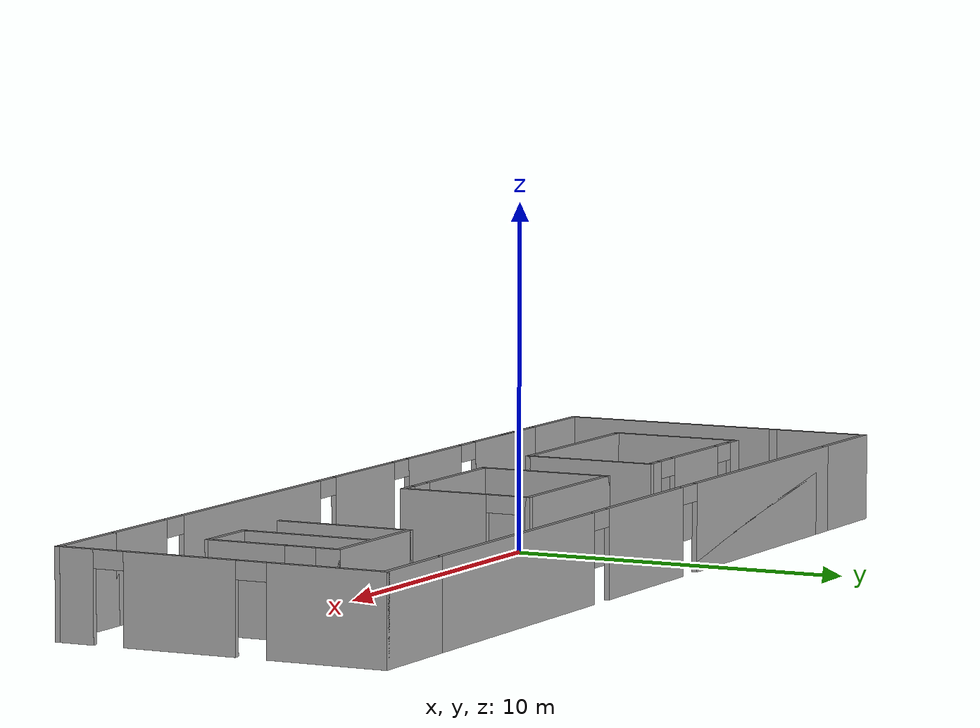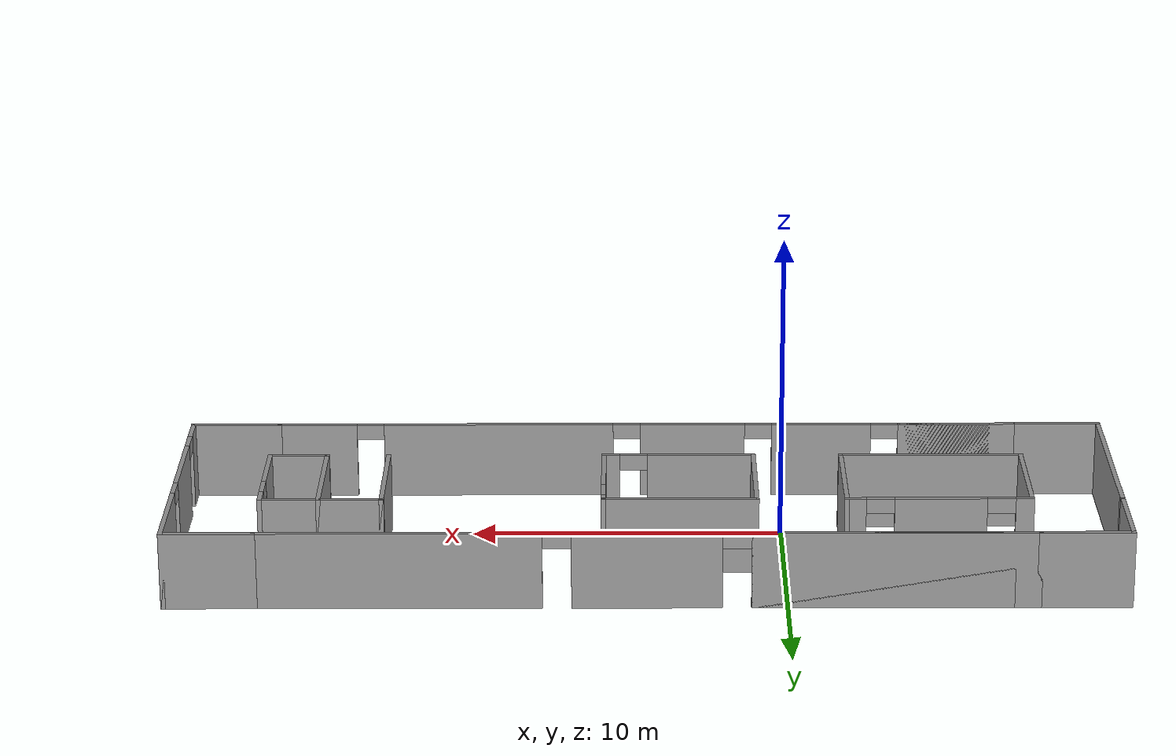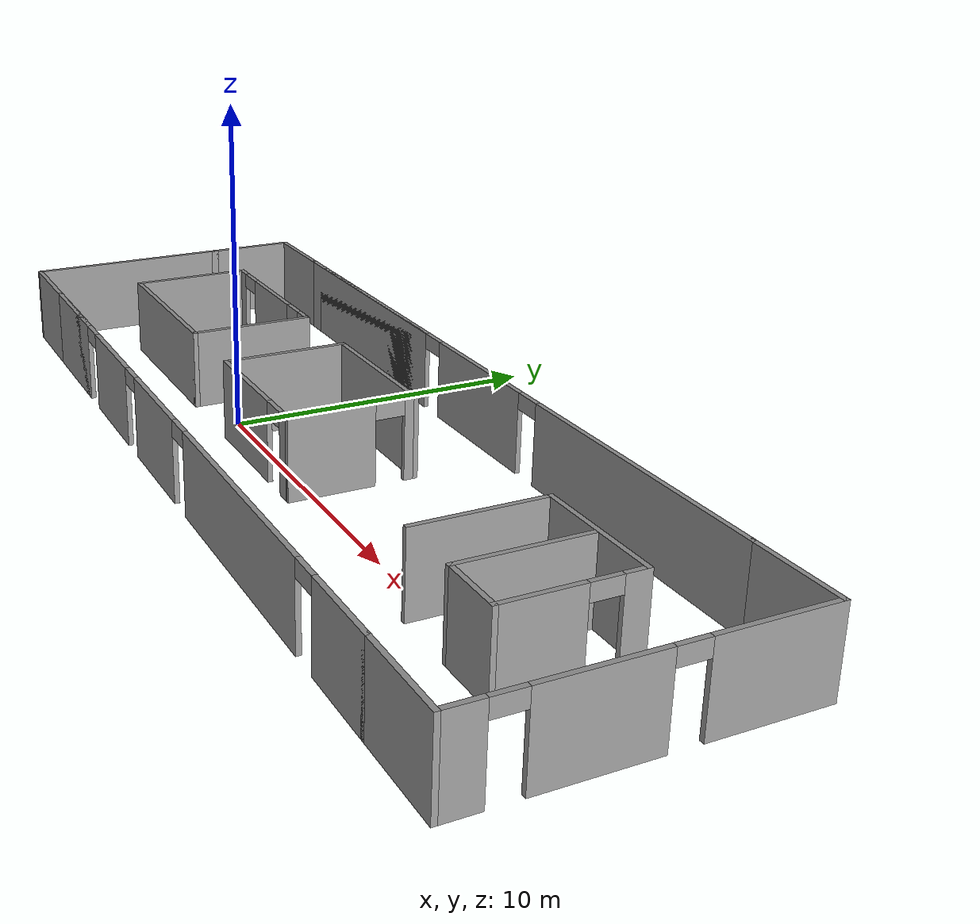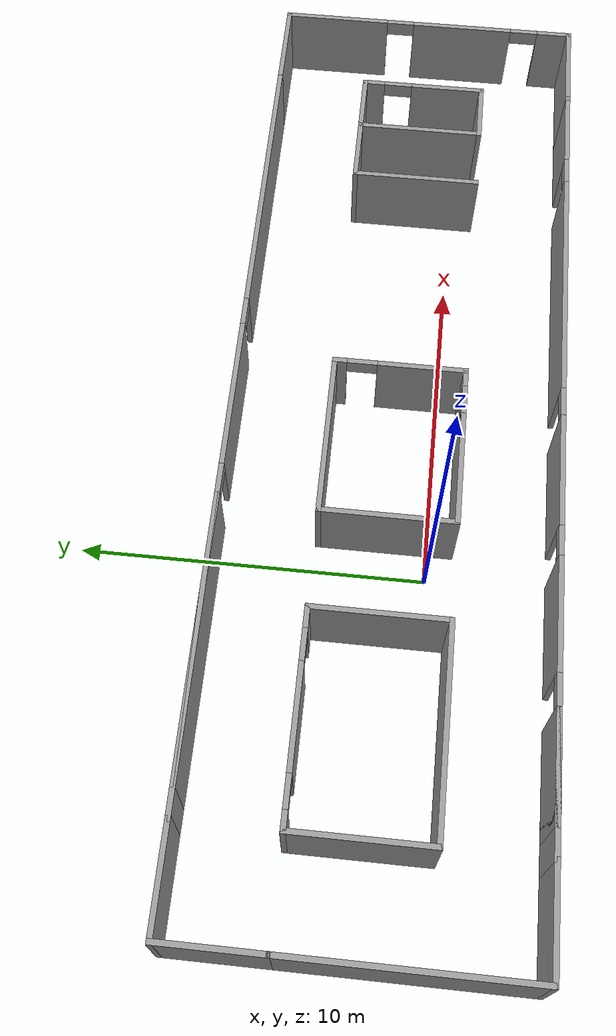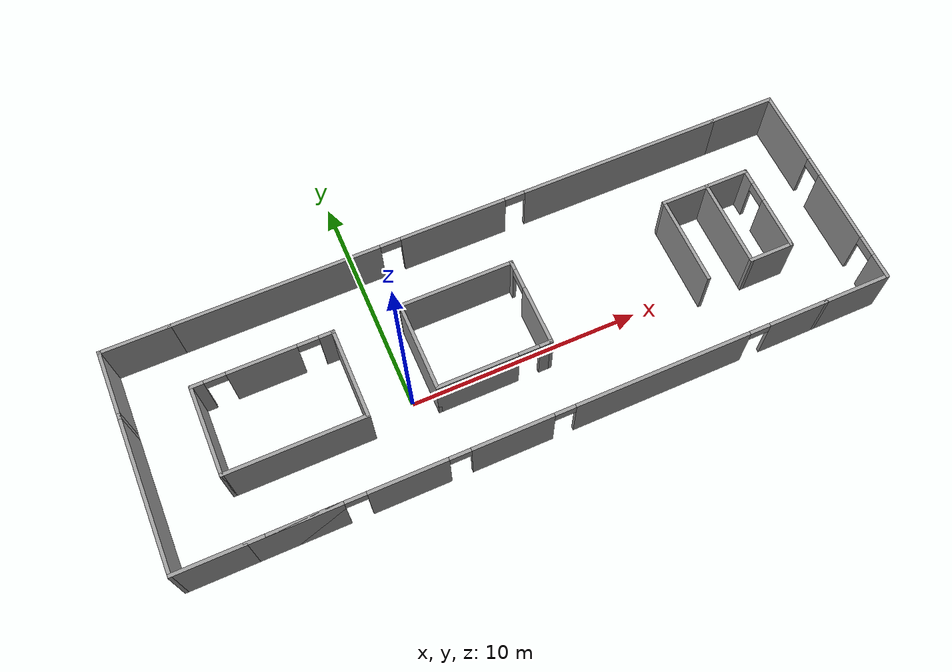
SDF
<?xml version='1.0'?>
<sdf version='1.7'>
  <model name='INB-3floor'>
    <pose>-628.792 255.403 0 0 -0 0</pose>
    <link name='Wall_28'>
      <collision name='Wall_28_Collision'>
        <geometry>
          <box>
            <size>115.75 0.15 2.5</size>
          </box>
        </geometry>
        <pose>0 0 1.25 0 -0 0</pose>
      </collision>
      <visual name='Wall_28_Visual'>
        <pose>0 0 1.25 0 -0 0</pose>
        <geometry>
          <box>
            <size>115.75 0.15 2.5</size>
          </box>
        </geometry>
        <material>
          <script>
            <uri>file://media/materials/scripts/gazebo.material</uri>
            <name>Gazebo/Grey</name>
          </script>
          <ambient>1 1 1 1</ambient>
        </material>
        <meta>
          <layer>0</layer>
        </meta>
      </visual>
      <pose>-633.213 203.092 0 0 -0 -1.8326</pose>
    </link>
    <link name='Wall_31'>
      <collision name='Wall_31_Collision'>
        <geometry>
          <box>
            <size>4 0.15 2.5</size>
          </box>
        </geometry>
        <pose>0 0 1.25 0 -0 0</pose>
      </collision>
      <visual name='Wall_31_Visual'>
        <pose>0 0 1.25 0 -0 0</pose>
        <geometry>
          <box>
            <size>4 0.15 2.5</size>
          </box>
        </geometry>
        <material>
          <script>
            <uri>file://media/materials/scripts/gazebo.material</uri>
            <name>Gazebo/Grey</name>
          </script>
          <ambient>1 1 1 1</ambient>
        </material>
        <meta>
          <layer>0</layer>
        </meta>
      </visual>
      <pose>620.99 -254.164 0 0 -0 -1.5708</pose>
    </link>
    <link name='Wall_32'>
      <collision name='Wall_32_Collision'>
        <geometry>
          <box>
            <size>6 0.15 2.5</size>
          </box>
        </geometry>
        <pose>0 0 1.25 0 -0 0</pose>
      </collision>
      <visual name='Wall_32_Visual'>
        <pose>0 0 1.25 0 -0 0</pose>
        <geometry>
          <box>
            <size>6 0.15 2.5</size>
          </box>
        </geometry>
        <material>
          <script>
            <uri>file://media/materials/scripts/gazebo.material</uri>
            <name>Gazebo/Grey</name>
          </script>
          <ambient>1 1 1 1</ambient>
        </material>
        <meta>
          <layer>0</layer>
        </meta>
      </visual>
      <pose>623.915 -256.089 0 0 -0 0</pose>
    </link>
    <link name='Wall_34'>
      <pose>632.115 -256.089 0 0 -0 0</pose>
      <visual name='Wall_34_Visual_0'>
        <pose>-0.74226 0 1.25 0 -0 0</pose>
        <geometry>
          <box>
            <size>3.51548 0.15 2.5</size>
          </box>
        </geometry>
        <material>
          <script>
            <uri>file://media/materials/scripts/gazebo.material</uri>
            <name>Gazebo/Grey</name>
          </script>
          <ambient>1 1 1 1</ambient>
        </material>
        <meta>
          <layer>0</layer>
        </meta>
      </visual>
      <collision name='Wall_34_Collision_0'>
        <geometry>
          <box>
            <size>3.51548 0.15 2.5</size>
          </box>
        </geometry>
        <pose>-0.74226 0 1.25 0 -0 0</pose>
      </collision>
      <visual name='Wall_34_Visual_1'>
        <pose>2.20774 0 1.25 0 -0 0</pose>
        <geometry>
          <box>
            <size>0.584521 0.15 2.5</size>
          </box>
        </geometry>
        <material>
          <script>
            <uri>file://media/materials/scripts/gazebo.material</uri>
            <name>Gazebo/Grey</name>
          </script>
          <ambient>1 1 1 1</ambient>
        </material>
        <meta>
          <layer>0</layer>
        </meta>
      </visual>
      <collision name='Wall_34_Collision_1'>
        <geometry>
          <box>
            <size>0.584521 0.15 2.5</size>
          </box>
        </geometry>
        <pose>2.20774 0 1.25 0 -0 0</pose>
      </collision>
      <visual name='Wall_34_Visual_2'>
        <pose>1.46548 0 2.25 0 -0 0</pose>
        <geometry>
          <box>
            <size>0.9 0.15 0.5</size>
          </box>
        </geometry>
        <material>
          <script>
            <uri>file://media/materials/scripts/gazebo.material</uri>
            <name>Gazebo/Grey</name>
          </script>
          <ambient>1 1 1 1</ambient>
        </material>
        <meta>
          <layer>0</layer>
        </meta>
      </visual>
      <collision name='Wall_34_Collision_2'>
        <geometry>
          <box>
            <size>0.9 0.15 0.5</size>
          </box>
        </geometry>
        <pose>1.46548 0 2.25 0 -0 0</pose>
      </collision>
    </link>
    <link name='Wall_35'>
      <pose>634.54 -254.164 0 0 -0 1.5708</pose>
      <visual name='Wall_35_Visual_0'>
        <pose>-0.667392 0 1.25 0 -0 0</pose>
        <geometry>
          <box>
            <size>2.66522 0.15 2.5</size>
          </box>
        </geometry>
        <material>
          <script>
            <uri>file://media/materials/scripts/gazebo.material</uri>
            <name>Gazebo/Grey</name>
          </script>
          <ambient>1 1 1 1</ambient>
        </material>
        <meta>
          <layer>0</layer>
        </meta>
      </visual>
      <collision name='Wall_35_Collision_0'>
        <geometry>
          <box>
            <size>2.66522 0.15 2.5</size>
          </box>
        </geometry>
        <pose>-0.667392 0 1.25 0 -0 0</pose>
      </collision>
      <visual name='Wall_35_Visual_1'>
        <pose>1.78261 0 1.25 0 -0 0</pose>
        <geometry>
          <box>
            <size>0.434784 0.15 2.5</size>
          </box>
        </geometry>
        <material>
          <script>
            <uri>file://media/materials/scripts/gazebo.material</uri>
            <name>Gazebo/Grey</name>
          </script>
          <ambient>1 1 1 1</ambient>
        </material>
        <meta>
          <layer>0</layer>
        </meta>
      </visual>
      <collision name='Wall_35_Collision_1'>
        <geometry>
          <box>
            <size>0.434784 0.15 2.5</size>
          </box>
        </geometry>
        <pose>1.78261 0 1.25 0 -0 0</pose>
      </collision>
      <visual name='Wall_35_Visual_2'>
        <pose>1.11522 0 2.25 0 -0 0</pose>
        <geometry>
          <box>
            <size>0.9 0.15 0.5</size>
          </box>
        </geometry>
        <material>
          <script>
            <uri>file://media/materials/scripts/gazebo.material</uri>
            <name>Gazebo/Grey</name>
          </script>
          <ambient>1 1 1 1</ambient>
        </material>
        <meta>
          <layer>0</layer>
        </meta>
      </visual>
      <collision name='Wall_35_Collision_2'>
        <geometry>
          <box>
            <size>0.9 0.15 0.5</size>
          </box>
        </geometry>
        <pose>1.11522 0 2.25 0 -0 0</pose>
      </collision>
    </link>
    <link name='Wall_36'>
      <collision name='Wall_36_Collision'>
        <geometry>
          <box>
            <size>5 0.15 2.5</size>
          </box>
        </geometry>
        <pose>0 0 1.25 0 -0 0</pose>
      </collision>
      <visual name='Wall_36_Visual'>
        <pose>0 0 1.25 0 -0 0</pose>
        <geometry>
          <box>
            <size>5 0.15 2.5</size>
          </box>
        </geometry>
        <material>
          <script>
            <uri>file://media/materials/scripts/gazebo.material</uri>
            <name>Gazebo/Grey</name>
          </script>
          <ambient>1 1 1 1</ambient>
        </material>
        <meta>
          <layer>0</layer>
        </meta>
      </visual>
      <pose>632.115 -252.239 0 0 -0 3.14159</pose>
    </link>
    <link name='Wall_37'>
      <collision name='Wall_37_Collision'>
        <geometry>
          <box>
            <size>4 0.15 2.5</size>
          </box>
        </geometry>
        <pose>0 0 1.25 0 -0 0</pose>
      </collision>
      <visual name='Wall_37_Visual'>
        <pose>0 0 1.25 0 -0 0</pose>
        <geometry>
          <box>
            <size>4 0.15 2.5</size>
          </box>
        </geometry>
        <material>
          <script>
            <uri>file://media/materials/scripts/gazebo.material</uri>
            <name>Gazebo/Grey</name>
          </script>
          <ambient>1 1 1 1</ambient>
        </material>
        <meta>
          <layer>0</layer>
        </meta>
      </visual>
      <pose>629.69 -254.164 0 0 -0 -1.5708</pose>
    </link>
    <link name='Wall_40'>
      <pose>623.915 -252.239 0 0 -0 3.14159</pose>
      <visual name='Wall_40_Visual_0'>
        <pose>-2.65804 0 1.25 0 -0 0</pose>
        <geometry>
          <box>
            <size>0.68392 0.15 2.5</size>
          </box>
        </geometry>
        <material>
          <script>
            <uri>file://media/materials/scripts/gazebo.material</uri>
            <name>Gazebo/Grey</name>
          </script>
          <ambient>1 1 1 1</ambient>
        </material>
        <meta>
          <layer>0</layer>
        </meta>
      </visual>
      <collision name='Wall_40_Collision_0'>
        <geometry>
          <box>
            <size>0.68392 0.15 2.5</size>
          </box>
        </geometry>
        <pose>-2.65804 0 1.25 0 -0 0</pose>
      </collision>
      <visual name='Wall_40_Visual_1'>
        <pose>0.048319 0 1.25 0 -0 0</pose>
        <geometry>
          <box>
            <size>2.9288 0.15 2.5</size>
          </box>
        </geometry>
        <material>
          <script>
            <uri>file://media/materials/scripts/gazebo.material</uri>
            <name>Gazebo/Grey</name>
          </script>
          <ambient>1 1 1 1</ambient>
        </material>
        <meta>
          <layer>0</layer>
        </meta>
      </visual>
      <collision name='Wall_40_Collision_1'>
        <geometry>
          <box>
            <size>2.9288 0.15 2.5</size>
          </box>
        </geometry>
        <pose>0.048319 0 1.25 0 -0 0</pose>
      </collision>
      <visual name='Wall_40_Visual_2'>
        <pose>2.70636 0 1.25 0 -0 0</pose>
        <geometry>
          <box>
            <size>0.587283 0.15 2.5</size>
          </box>
        </geometry>
        <material>
          <script>
            <uri>file://media/materials/scripts/gazebo.material</uri>
            <name>Gazebo/Grey</name>
          </script>
          <ambient>1 1 1 1</ambient>
        </material>
        <meta>
          <layer>0</layer>
        </meta>
      </visual>
      <collision name='Wall_40_Collision_2'>
        <geometry>
          <box>
            <size>0.587283 0.15 2.5</size>
          </box>
        </geometry>
        <pose>2.70636 0 1.25 0 -0 0</pose>
      </collision>
      <visual name='Wall_40_Visual_3'>
        <pose>-1.86608 0 2.25 0 -0 0</pose>
        <geometry>
          <box>
            <size>0.9 0.15 0.5</size>
          </box>
        </geometry>
        <material>
          <script>
            <uri>file://media/materials/scripts/gazebo.material</uri>
            <name>Gazebo/Grey</name>
          </script>
          <ambient>1 1 1 1</ambient>
        </material>
        <meta>
          <layer>0</layer>
        </meta>
      </visual>
      <collision name='Wall_40_Collision_3'>
        <geometry>
          <box>
            <size>0.9 0.15 0.5</size>
          </box>
        </geometry>
        <pose>-1.86608 0 2.25 0 -0 0</pose>
      </collision>
      <visual name='Wall_40_Visual_4'>
        <pose>1.96272 0 2.25 0 -0 0</pose>
        <geometry>
          <box>
            <size>0.9 0.15 0.5</size>
          </box>
        </geometry>
        <material>
          <script>
            <uri>file://media/materials/scripts/gazebo.material</uri>
            <name>Gazebo/Grey</name>
          </script>
          <ambient>1 1 1 1</ambient>
        </material>
        <meta>
          <layer>0</layer>
        </meta>
      </visual>
      <collision name='Wall_40_Collision_4'>
        <geometry>
          <box>
            <size>0.9 0.15 0.5</size>
          </box>
        </geometry>
        <pose>1.96272 0 2.25 0 -0 0</pose>
      </collision>
    </link>
    <link name='Wall_43'>
      <collision name='Wall_43_Collision'>
        <geometry>
          <box>
            <size>4 0.15 2.5</size>
          </box>
        </geometry>
        <pose>0 0 1.25 0 -0 0</pose>
      </collision>
      <visual name='Wall_43_Visual'>
        <pose>0 0 1.25 0 -0 0</pose>
        <geometry>
          <box>
            <size>4 0.15 2.5</size>
          </box>
        </geometry>
        <material>
          <script>
            <uri>file://media/materials/scripts/gazebo.material</uri>
            <name>Gazebo/Grey</name>
          </script>
          <ambient>1 1 1 1</ambient>
        </material>
        <meta>
          <layer>0</layer>
        </meta>
      </visual>
      <pose>626.84 -254.164 0 0 -0 -1.5708</pose>
    </link>
    <link name='Wall_49'>
      <collision name='Wall_49_Collision'>
        <geometry>
          <box>
            <size>4 0.15 2.5</size>
          </box>
        </geometry>
        <pose>0 0 1.25 0 -0 0</pose>
      </collision>
      <visual name='Wall_49_Visual'>
        <pose>0 0 1.25 0 -0 0</pose>
        <geometry>
          <box>
            <size>4 0.15 2.5</size>
          </box>
        </geometry>
        <material>
          <script>
            <uri>file://media/materials/scripts/gazebo.material</uri>
            <name>Gazebo/Grey</name>
          </script>
          <ambient>1 1 1 1</ambient>
        </material>
        <meta>
          <layer>0</layer>
        </meta>
      </visual>
      <pose>641.543 -254.161 0 0 -0 -1.5708</pose>
    </link>
    <link name='Wall_51'>
      <collision name='Wall_51_Collision'>
        <geometry>
          <box>
            <size>4 0.15 2.5</size>
          </box>
        </geometry>
        <pose>0 0 1.25 0 -0 0</pose>
      </collision>
      <visual name='Wall_51_Visual'>
        <pose>0 0 1.25 0 -0 0</pose>
        <geometry>
          <box>
            <size>4 0.15 2.5</size>
          </box>
        </geometry>
        <material>
          <script>
            <uri>file://media/materials/scripts/gazebo.material</uri>
            <name>Gazebo/Grey</name>
          </script>
          <ambient>1 1 1 1</ambient>
        </material>
        <meta>
          <layer>0</layer>
        </meta>
      </visual>
      <pose>643.468 -252.236 0 0 -0 0</pose>
    </link>
    <link name='Wall_52'>
      <pose>645.393 -254.161 0 0 -0 -1.5708</pose>
      <visual name='Wall_52_Visual_0'>
        <pose>-1.63929 0 1.25 0 -0 0</pose>
        <geometry>
          <box>
            <size>0.721425 0.15 2.5</size>
          </box>
        </geometry>
        <material>
          <script>
            <uri>file://media/materials/scripts/gazebo.material</uri>
            <name>Gazebo/Grey</name>
          </script>
          <ambient>1 1 1 1</ambient>
        </material>
        <meta>
          <layer>0</layer>
        </meta>
      </visual>
      <collision name='Wall_52_Collision_0'>
        <geometry>
          <box>
            <size>0.721425 0.15 2.5</size>
          </box>
        </geometry>
        <pose>-1.63929 0 1.25 0 -0 0</pose>
      </collision>
      <visual name='Wall_52_Visual_1'>
        <pose>0.810712 0 1.25 0 -0 0</pose>
        <geometry>
          <box>
            <size>2.37858 0.15 2.5</size>
          </box>
        </geometry>
        <material>
          <script>
            <uri>file://media/materials/scripts/gazebo.material</uri>
            <name>Gazebo/Grey</name>
          </script>
          <ambient>1 1 1 1</ambient>
        </material>
        <meta>
          <layer>0</layer>
        </meta>
      </visual>
      <collision name='Wall_52_Collision_1'>
        <geometry>
          <box>
            <size>2.37858 0.15 2.5</size>
          </box>
        </geometry>
        <pose>0.810712 0 1.25 0 -0 0</pose>
      </collision>
      <visual name='Wall_52_Visual_2'>
        <pose>-0.828575 0 2.25 0 -0 0</pose>
        <geometry>
          <box>
            <size>0.9 0.15 0.5</size>
          </box>
        </geometry>
        <material>
          <script>
            <uri>file://media/materials/scripts/gazebo.material</uri>
            <name>Gazebo/Grey</name>
          </script>
          <ambient>1 1 1 1</ambient>
        </material>
        <meta>
          <layer>0</layer>
        </meta>
      </visual>
      <collision name='Wall_52_Collision_2'>
        <geometry>
          <box>
            <size>0.9 0.15 0.5</size>
          </box>
        </geometry>
        <pose>-0.828575 0 2.25 0 -0 0</pose>
      </collision>
    </link>
    <link name='Wall_53'>
      <collision name='Wall_53_Collision'>
        <geometry>
          <box>
            <size>2 0.15 2.5</size>
          </box>
        </geometry>
        <pose>0 0 1.25 0 -0 0</pose>
      </collision>
      <visual name='Wall_53_Visual'>
        <pose>0 0 1.25 0 -0 0</pose>
        <geometry>
          <box>
            <size>2 0.15 2.5</size>
          </box>
        </geometry>
        <material>
          <script>
            <uri>file://media/materials/scripts/gazebo.material</uri>
            <name>Gazebo/Grey</name>
          </script>
          <ambient>1 1 1 1</ambient>
        </material>
        <meta>
          <layer>0</layer>
        </meta>
      </visual>
      <pose>644.468 -256.086 0 0 -0 3.14159</pose>
    </link>
    <link name='Wall_54'>
      <collision name='Wall_54_Collision'>
        <geometry>
          <box>
            <size>4 0.15 2.5</size>
          </box>
        </geometry>
        <pose>0 0 1.25 0 -0 0</pose>
      </collision>
      <visual name='Wall_54_Visual'>
        <pose>0 0 1.25 0 -0 0</pose>
        <geometry>
          <box>
            <size>4 0.15 2.5</size>
          </box>
        </geometry>
        <material>
          <script>
            <uri>file://media/materials/scripts/gazebo.material</uri>
            <name>Gazebo/Grey</name>
          </script>
          <ambient>1 1 1 1</ambient>
        </material>
        <meta>
          <layer>0</layer>
        </meta>
      </visual>
      <pose>643.543 -254.161 0 0 -0 1.5708</pose>
    </link>
    <link name='Wall_57'>
      <collision name='Wall_57_Collision'>
        <geometry>
          <box>
            <size>3 0.15 2.5</size>
          </box>
        </geometry>
        <pose>0 0 1.25 0 -0 0</pose>
      </collision>
      <visual name='Wall_57_Visual'>
        <pose>0 0 1.25 0 -0 0</pose>
        <geometry>
          <box>
            <size>3 0.15 2.5</size>
          </box>
        </geometry>
        <material>
          <script>
            <uri>file://media/materials/scripts/gazebo.material</uri>
            <name>Gazebo/Grey</name>
          </script>
          <ambient>1 1 1 1</ambient>
        </material>
        <meta>
          <layer>0</layer>
        </meta>
      </visual>
      <pose>619.565 -258.939 0 0 -0 3.14159</pose>
    </link>
    <link name='Wall_58'>
      <collision name='Wall_58_Collision'>
        <geometry>
          <box>
            <size>6.75 0.15 2.5</size>
          </box>
        </geometry>
        <pose>0 0 1.25 0 -0 0</pose>
      </collision>
      <visual name='Wall_58_Visual'>
        <pose>0 0 1.25 0 -0 0</pose>
        <geometry>
          <box>
            <size>6.75 0.15 2.5</size>
          </box>
        </geometry>
        <material>
          <script>
            <uri>file://media/materials/scripts/gazebo.material</uri>
            <name>Gazebo/Grey</name>
          </script>
          <ambient>1 1 1 1</ambient>
        </material>
        <meta>
          <layer>0</layer>
        </meta>
      </visual>
      <pose>618.14 -255.639 0 0 -0 1.5708</pose>
    </link>
    <link name='Wall_59'>
      <collision name='Wall_59_Collision'>
        <geometry>
          <box>
            <size>0.25 0.15 2.5</size>
          </box>
        </geometry>
        <pose>0 0 1.25 0 -0 0</pose>
      </collision>
      <visual name='Wall_59_Visual'>
        <pose>0 0 1.25 0 -0 0</pose>
        <geometry>
          <box>
            <size>0.25 0.15 2.5</size>
          </box>
        </geometry>
        <material>
          <script>
            <uri>file://media/materials/scripts/gazebo.material</uri>
            <name>Gazebo/Grey</name>
          </script>
          <ambient>1 1 1 1</ambient>
        </material>
        <meta>
          <layer>0</layer>
        </meta>
      </visual>
      <pose>618.14 -252.289 0 0 -0 1.5708</pose>
    </link>
    <link name='Wall_62'>
      <collision name='Wall_62_Collision'>
        <geometry>
          <box>
            <size>3 0.15 2.5</size>
          </box>
        </geometry>
        <pose>0 0 1.25 0 -0 0</pose>
      </collision>
      <visual name='Wall_62_Visual'>
        <pose>0 0 1.25 0 -0 0</pose>
        <geometry>
          <box>
            <size>3 0.15 2.5</size>
          </box>
        </geometry>
        <material>
          <script>
            <uri>file://media/materials/scripts/gazebo.material</uri>
            <name>Gazebo/Grey</name>
          </script>
          <ambient>1 1 1 1</ambient>
        </material>
        <meta>
          <layer>0</layer>
        </meta>
      </visual>
      <pose>619.565 -249.389 0 0 -0 3.14159</pose>
    </link>
    <link name='Wall_63'>
      <collision name='Wall_63_Collision'>
        <geometry>
          <box>
            <size>3 0.15 2.5</size>
          </box>
        </geometry>
        <pose>0 0 1.25 0 -0 0</pose>
      </collision>
      <visual name='Wall_63_Visual'>
        <pose>0 0 1.25 0 -0 0</pose>
        <geometry>
          <box>
            <size>3 0.15 2.5</size>
          </box>
        </geometry>
        <material>
          <script>
            <uri>file://media/materials/scripts/gazebo.material</uri>
            <name>Gazebo/Grey</name>
          </script>
          <ambient>1 1 1 1</ambient>
        </material>
        <meta>
          <layer>0</layer>
        </meta>
      </visual>
      <pose>618.14 -250.814 0 0 -0 -1.5708</pose>
    </link>
    <link name='Wall_65'>
      <pose>633.165 -249.389 0 0 -0 0</pose>
      <visual name='Wall_65_Visual_0'>
        <pose>-7.74468 0 1.25 0 -0 0</pose>
        <geometry>
          <box>
            <size>9.01064 0.15 2.5</size>
          </box>
        </geometry>
        <material>
          <script>
            <uri>file://media/materials/scripts/gazebo.material</uri>
            <name>Gazebo/Grey</name>
          </script>
          <ambient>1 1 1 1</ambient>
        </material>
        <meta>
          <layer>0</layer>
        </meta>
      </visual>
      <collision name='Wall_65_Collision_0'>
        <geometry>
          <box>
            <size>9.01064 0.15 2.5</size>
          </box>
        </geometry>
        <pose>-7.74468 0 1.25 0 -0 0</pose>
      </collision>
      <visual name='Wall_65_Visual_1'>
        <pose>-7.3272 0 1.25 0 -0 0</pose>
        <geometry>
          <box>
            <size>8.17567 0.15 2.5</size>
          </box>
        </geometry>
        <material>
          <script>
            <uri>file://media/materials/scripts/gazebo.material</uri>
            <name>Gazebo/Grey</name>
          </script>
          <ambient>1 1 1 1</ambient>
        </material>
        <meta>
          <layer>0</layer>
        </meta>
      </visual>
      <collision name='Wall_65_Collision_1'>
        <geometry>
          <box>
            <size>8.17567 0.15 2.5</size>
          </box>
        </geometry>
        <pose>-7.3272 0 1.25 0 -0 0</pose>
      </collision>
      <visual name='Wall_65_Visual_2'>
        <pose>0.004238 0 1.25 0 -0 0</pose>
        <geometry>
          <box>
            <size>4.68721 0.15 2.5</size>
          </box>
        </geometry>
        <material>
          <script>
            <uri>file://media/materials/scripts/gazebo.material</uri>
            <name>Gazebo/Grey</name>
          </script>
          <ambient>1 1 1 1</ambient>
        </material>
        <meta>
          <layer>0</layer>
        </meta>
      </visual>
      <collision name='Wall_65_Collision_2'>
        <geometry>
          <box>
            <size>4.68721 0.15 2.5</size>
          </box>
        </geometry>
        <pose>0.004238 0 1.25 0 -0 0</pose>
      </collision>
      <visual name='Wall_65_Visual_3'>
        <pose>7.74892 0 1.25 0 -0 0</pose>
        <geometry>
          <box>
            <size>9.00216 0.15 2.5</size>
          </box>
        </geometry>
        <material>
          <script>
            <uri>file://media/materials/scripts/gazebo.material</uri>
            <name>Gazebo/Grey</name>
          </script>
          <ambient>1 1 1 1</ambient>
        </material>
        <meta>
          <layer>0</layer>
        </meta>
      </visual>
      <collision name='Wall_65_Collision_3'>
        <geometry>
          <box>
            <size>9.00216 0.15 2.5</size>
          </box>
        </geometry>
        <pose>7.74892 0 1.25 0 -0 0</pose>
      </collision>
      <visual name='Wall_65_Visual_4'>
        <pose>-2.78937 0 2.25 0 -0 0</pose>
        <geometry>
          <box>
            <size>0.9 0.15 0.5</size>
          </box>
        </geometry>
        <material>
          <script>
            <uri>file://media/materials/scripts/gazebo.material</uri>
            <name>Gazebo/Grey</name>
          </script>
          <ambient>1 1 1 1</ambient>
        </material>
        <meta>
          <layer>0</layer>
        </meta>
      </visual>
      <collision name='Wall_65_Collision_4'>
        <geometry>
          <box>
            <size>0.9 0.15 0.5</size>
          </box>
        </geometry>
        <pose>-2.78937 0 2.25 0 -0 0</pose>
      </collision>
      <visual name='Wall_65_Visual_5'>
        <pose>-2.78937 0 2.25 0 -0 0</pose>
        <geometry>
          <box>
            <size>0.9 0.15 0.5</size>
          </box>
        </geometry>
        <material>
          <script>
            <uri>file://media/materials/scripts/gazebo.material</uri>
            <name>Gazebo/Grey</name>
          </script>
          <ambient>1 1 1 1</ambient>
        </material>
        <meta>
          <layer>0</layer>
        </meta>
      </visual>
      <collision name='Wall_65_Collision_5'>
        <geometry>
          <box>
            <size>0.9 0.15 0.5</size>
          </box>
        </geometry>
        <pose>-2.78937 0 2.25 0 -0 0</pose>
      </collision>
      <visual name='Wall_65_Visual_6'>
        <pose>2.79784 0 2.25 0 -0 0</pose>
        <geometry>
          <box>
            <size>0.9 0.15 0.5</size>
          </box>
        </geometry>
        <material>
          <script>
            <uri>file://media/materials/scripts/gazebo.material</uri>
            <name>Gazebo/Grey</name>
          </script>
          <ambient>1 1 1 1</ambient>
        </material>
        <meta>
          <layer>0</layer>
        </meta>
      </visual>
      <collision name='Wall_65_Collision_6'>
        <geometry>
          <box>
            <size>0.9 0.15 0.5</size>
          </box>
        </geometry>
        <pose>2.79784 0 2.25 0 -0 0</pose>
      </collision>
    </link>
    <link name='Wall_69'>
      <pose>633.165 -258.939 0 0 -0 0</pose>
      <visual name='Wall_69_Visual_0'>
        <pose>-10.3114 0 1.25 0 -0 0</pose>
        <geometry>
          <box>
            <size>3.87721 0.15 2.5</size>
          </box>
        </geometry>
        <material>
          <script>
            <uri>file://media/materials/scripts/gazebo.material</uri>
            <name>Gazebo/Grey</name>
          </script>
          <ambient>1 1 1 1</ambient>
        </material>
        <meta>
          <layer>0</layer>
        </meta>
      </visual>
      <collision name='Wall_69_Collision_0'>
        <geometry>
          <box>
            <size>3.87721 0.15 2.5</size>
          </box>
        </geometry>
        <pose>-10.3114 0 1.25 0 -0 0</pose>
      </collision>
      <visual name='Wall_69_Visual_1'>
        <pose>-9.89391 0 1.25 0 -0 0</pose>
        <geometry>
          <box>
            <size>3.04224 0.15 2.5</size>
          </box>
        </geometry>
        <material>
          <script>
            <uri>file://media/materials/scripts/gazebo.material</uri>
            <name>Gazebo/Grey</name>
          </script>
          <ambient>1 1 1 1</ambient>
        </material>
        <meta>
          <layer>0</layer>
        </meta>
      </visual>
      <collision name='Wall_69_Collision_1'>
        <geometry>
          <box>
            <size>3.04224 0.15 2.5</size>
          </box>
        </geometry>
        <pose>-9.89391 0 1.25 0 -0 0</pose>
      </collision>
      <visual name='Wall_69_Visual_2'>
        <pose>-5.82404 0 1.25 0 -0 0</pose>
        <geometry>
          <box>
            <size>3.2975 0.15 2.5</size>
          </box>
        </geometry>
        <material>
          <script>
            <uri>file://media/materials/scripts/gazebo.material</uri>
            <name>Gazebo/Grey</name>
          </script>
          <ambient>1 1 1 1</ambient>
        </material>
        <meta>
          <layer>0</layer>
        </meta>
      </visual>
      <collision name='Wall_69_Collision_2'>
        <geometry>
          <box>
            <size>3.2975 0.15 2.5</size>
          </box>
        </geometry>
        <pose>-5.82404 0 1.25 0 -0 0</pose>
      </collision>
      <visual name='Wall_69_Visual_3'>
        <pose>-1.54146 0 1.25 0 -0 0</pose>
        <geometry>
          <box>
            <size>3.46766 0.15 2.5</size>
          </box>
        </geometry>
        <material>
          <script>
            <uri>file://media/materials/scripts/gazebo.material</uri>
            <name>Gazebo/Grey</name>
          </script>
          <ambient>1 1 1 1</ambient>
        </material>
        <meta>
          <layer>0</layer>
        </meta>
      </visual>
      <collision name='Wall_69_Collision_3'>
        <geometry>
          <box>
            <size>3.46766 0.15 2.5</size>
          </box>
        </geometry>
        <pose>-1.54146 0 1.25 0 -0 0</pose>
      </collision>
      <visual name='Wall_69_Visual_4'>
        <pose>4.89659 0 1.25 0 -0 0</pose>
        <geometry>
          <box>
            <size>7.60844 0.15 2.5</size>
          </box>
        </geometry>
        <material>
          <script>
            <uri>file://media/materials/scripts/gazebo.material</uri>
            <name>Gazebo/Grey</name>
          </script>
          <ambient>1 1 1 1</ambient>
        </material>
        <meta>
          <layer>0</layer>
        </meta>
      </visual>
      <collision name='Wall_69_Collision_4'>
        <geometry>
          <box>
            <size>7.60844 0.15 2.5</size>
          </box>
        </geometry>
        <pose>4.89659 0 1.25 0 -0 0</pose>
      </collision>
      <visual name='Wall_69_Visual_5'>
        <pose>10.9254 0 1.25 0 -0 0</pose>
        <geometry>
          <box>
            <size>2.64919 0.15 2.5</size>
          </box>
        </geometry>
        <material>
          <script>
            <uri>file://media/materials/scripts/gazebo.material</uri>
            <name>Gazebo/Grey</name>
          </script>
          <ambient>1 1 1 1</ambient>
        </material>
        <meta>
          <layer>0</layer>
        </meta>
      </visual>
      <collision name='Wall_69_Collision_5'>
        <geometry>
          <box>
            <size>2.64919 0.15 2.5</size>
          </box>
        </geometry>
        <pose>10.9254 0 1.25 0 -0 0</pose>
      </collision>
      <visual name='Wall_69_Visual_6'>
        <pose>-7.92279 0 2.25 0 -0 0</pose>
        <geometry>
          <box>
            <size>0.9 0.15 0.5</size>
          </box>
        </geometry>
        <material>
          <script>
            <uri>file://media/materials/scripts/gazebo.material</uri>
            <name>Gazebo/Grey</name>
          </script>
          <ambient>1 1 1 1</ambient>
        </material>
        <meta>
          <layer>0</layer>
        </meta>
      </visual>
      <collision name='Wall_69_Collision_6'>
        <geometry>
          <box>
            <size>0.9 0.15 0.5</size>
          </box>
        </geometry>
        <pose>-7.92279 0 2.25 0 -0 0</pose>
      </collision>
      <visual name='Wall_69_Visual_7'>
        <pose>-7.92279 0 2.25 0 -0 0</pose>
        <geometry>
          <box>
            <size>0.9 0.15 0.5</size>
          </box>
        </geometry>
        <material>
          <script>
            <uri>file://media/materials/scripts/gazebo.material</uri>
            <name>Gazebo/Grey</name>
          </script>
          <ambient>1 1 1 1</ambient>
        </material>
        <meta>
          <layer>0</layer>
        </meta>
      </visual>
      <collision name='Wall_69_Collision_7'>
        <geometry>
          <box>
            <size>0.9 0.15 0.5</size>
          </box>
        </geometry>
        <pose>-7.92279 0 2.25 0 -0 0</pose>
      </collision>
      <visual name='Wall_69_Visual_8'>
        <pose>-3.72529 0 2.25 0 -0 0</pose>
        <geometry>
          <box>
            <size>0.9 0.15 0.5</size>
          </box>
        </geometry>
        <material>
          <script>
            <uri>file://media/materials/scripts/gazebo.material</uri>
            <name>Gazebo/Grey</name>
          </script>
          <ambient>1 1 1 1</ambient>
        </material>
        <meta>
          <layer>0</layer>
        </meta>
      </visual>
      <collision name='Wall_69_Collision_8'>
        <geometry>
          <box>
            <size>0.9 0.15 0.5</size>
          </box>
        </geometry>
        <pose>-3.72529 0 2.25 0 -0 0</pose>
      </collision>
      <visual name='Wall_69_Visual_9'>
        <pose>0.642371 0 2.25 0 -0 0</pose>
        <geometry>
          <box>
            <size>0.9 0.15 0.5</size>
          </box>
        </geometry>
        <material>
          <script>
            <uri>file://media/materials/scripts/gazebo.material</uri>
            <name>Gazebo/Grey</name>
          </script>
          <ambient>1 1 1 1</ambient>
        </material>
        <meta>
          <layer>0</layer>
        </meta>
      </visual>
      <collision name='Wall_69_Collision_9'>
        <geometry>
          <box>
            <size>0.9 0.15 0.5</size>
          </box>
        </geometry>
        <pose>0.642371 0 2.25 0 -0 0</pose>
      </collision>
      <visual name='Wall_69_Visual_10'>
        <pose>9.15081 0 2.25 0 -0 0</pose>
        <geometry>
          <box>
            <size>0.9 0.15 0.5</size>
          </box>
        </geometry>
        <material>
          <script>
            <uri>file://media/materials/scripts/gazebo.material</uri>
            <name>Gazebo/Grey</name>
          </script>
          <ambient>1 1 1 1</ambient>
        </material>
        <meta>
          <layer>0</layer>
        </meta>
      </visual>
      <collision name='Wall_69_Collision_10'>
        <geometry>
          <box>
            <size>0.9 0.15 0.5</size>
          </box>
        </geometry>
        <pose>9.15081 0 2.25 0 -0 0</pose>
      </collision>
    </link>
    <link name='Wall_70'>
      <collision name='Wall_70_Collision'>
        <geometry>
          <box>
            <size>0.15 0.15 2.5</size>
          </box>
        </geometry>
        <pose>0 0 1.25 0 -0 0</pose>
      </collision>
      <visual name='Wall_70_Visual'>
        <pose>0 0 1.25 0 -0 0</pose>
        <geometry>
          <box>
            <size>0.15 0.15 2.5</size>
          </box>
        </geometry>
        <material>
          <script>
            <uri>file://media/materials/scripts/gazebo.material</uri>
            <name>Gazebo/Grey</name>
          </script>
          <ambient>1 1 1 1</ambient>
        </material>
        <meta>
          <layer>0</layer>
        </meta>
      </visual>
      <pose>645.34 -258.939 0 0 -0 0</pose>
    </link>
    <link name='Wall_74'>
      <collision name='Wall_74_Collision'>
        <geometry>
          <box>
            <size>3 0.15 2.5</size>
          </box>
        </geometry>
        <pose>0 0 1.25 0 -0 0</pose>
      </collision>
      <visual name='Wall_74_Visual'>
        <pose>0 0 1.25 0 -0 0</pose>
        <geometry>
          <box>
            <size>3 0.15 2.5</size>
          </box>
        </geometry>
        <material>
          <script>
            <uri>file://media/materials/scripts/gazebo.material</uri>
            <name>Gazebo/Grey</name>
          </script>
          <ambient>1 1 1 1</ambient>
        </material>
        <meta>
          <layer>0</layer>
        </meta>
      </visual>
      <pose>646.765 -258.939 0 0 -0 3.14159</pose>
    </link>
    <link name='Wall_83'>
      <collision name='Wall_83_Collision'>
        <geometry>
          <box>
            <size>3 0.15 2.5</size>
          </box>
        </geometry>
        <pose>0 0 1.25 0 -0 0</pose>
      </collision>
      <visual name='Wall_83_Visual'>
        <pose>0 0 1.25 0 -0 0</pose>
        <geometry>
          <box>
            <size>3 0.15 2.5</size>
          </box>
        </geometry>
        <material>
          <script>
            <uri>file://media/materials/scripts/gazebo.material</uri>
            <name>Gazebo/Grey</name>
          </script>
          <ambient>1 1 1 1</ambient>
        </material>
        <meta>
          <layer>0</layer>
        </meta>
      </visual>
      <pose>646.765 -249.389 0 0 -0 3.14159</pose>
    </link>
    <link name='Wall_85'>
      <pose>648.19 -254.164 0 0 -0 -1.5708</pose>
      <visual name='Wall_85_Visual_0'>
        <pose>-3.12252 0 1.25 0 -0 0</pose>
        <geometry>
          <box>
            <size>3.45495 0.15 2.5</size>
          </box>
        </geometry>
        <material>
          <script>
            <uri>file://media/materials/scripts/gazebo.material</uri>
            <name>Gazebo/Grey</name>
          </script>
          <ambient>1 1 1 1</ambient>
        </material>
        <meta>
          <layer>0</layer>
        </meta>
      </visual>
      <collision name='Wall_85_Collision_0'>
        <geometry>
          <box>
            <size>3.45495 0.15 2.5</size>
          </box>
        </geometry>
        <pose>-3.12252 0 1.25 0 -0 0</pose>
      </collision>
      <visual name='Wall_85_Visual_1'>
        <pose>1.1537 0 1.25 0 -0 0</pose>
        <geometry>
          <box>
            <size>3.2975 0.15 2.5</size>
          </box>
        </geometry>
        <material>
          <script>
            <uri>file://media/materials/scripts/gazebo.material</uri>
            <name>Gazebo/Grey</name>
          </script>
          <ambient>1 1 1 1</ambient>
        </material>
        <meta>
          <layer>0</layer>
        </meta>
      </visual>
      <collision name='Wall_85_Collision_1'>
        <geometry>
          <box>
            <size>3.2975 0.15 2.5</size>
          </box>
        </geometry>
        <pose>1.1537 0 1.25 0 -0 0</pose>
      </collision>
      <visual name='Wall_85_Visual_2'>
        <pose>4.27622 0 1.25 0 -0 0</pose>
        <geometry>
          <box>
            <size>1.14755 0.15 2.5</size>
          </box>
        </geometry>
        <material>
          <script>
            <uri>file://media/materials/scripts/gazebo.material</uri>
            <name>Gazebo/Grey</name>
          </script>
          <ambient>1 1 1 1</ambient>
        </material>
        <meta>
          <layer>0</layer>
        </meta>
      </visual>
      <collision name='Wall_85_Collision_2'>
        <geometry>
          <box>
            <size>1.14755 0.15 2.5</size>
          </box>
        </geometry>
        <pose>4.27622 0 1.25 0 -0 0</pose>
      </collision>
      <visual name='Wall_85_Visual_3'>
        <pose>-0.945047 0 2.25 0 -0 0</pose>
        <geometry>
          <box>
            <size>0.9 0.15 0.5</size>
          </box>
        </geometry>
        <material>
          <script>
            <uri>file://media/materials/scripts/gazebo.material</uri>
            <name>Gazebo/Grey</name>
          </script>
          <ambient>1 1 1 1</ambient>
        </material>
        <meta>
          <layer>0</layer>
        </meta>
      </visual>
      <collision name='Wall_85_Collision_3'>
        <geometry>
          <box>
            <size>0.9 0.15 0.5</size>
          </box>
        </geometry>
        <pose>-0.945047 0 2.25 0 -0 0</pose>
      </collision>
      <visual name='Wall_85_Visual_4'>
        <pose>3.25245 0 2.25 0 -0 0</pose>
        <geometry>
          <box>
            <size>0.9 0.15 0.5</size>
          </box>
        </geometry>
        <material>
          <script>
            <uri>file://media/materials/scripts/gazebo.material</uri>
            <name>Gazebo/Grey</name>
          </script>
          <ambient>1 1 1 1</ambient>
        </material>
        <meta>
          <layer>0</layer>
        </meta>
      </visual>
      <collision name='Wall_85_Collision_4'>
        <geometry>
          <box>
            <size>0.9 0.15 0.5</size>
          </box>
        </geometry>
        <pose>3.25245 0 2.25 0 -0 0</pose>
      </collision>
    </link>
    <static>1</static>
  </model>
</sdf>
